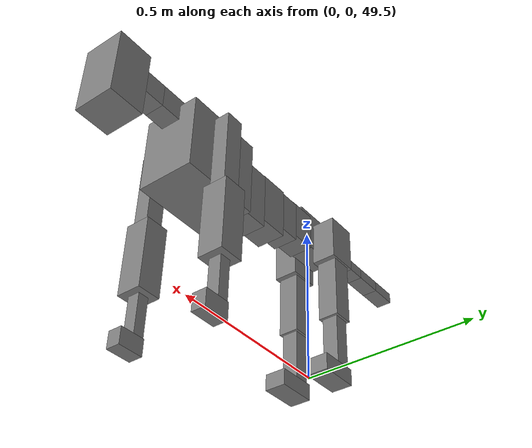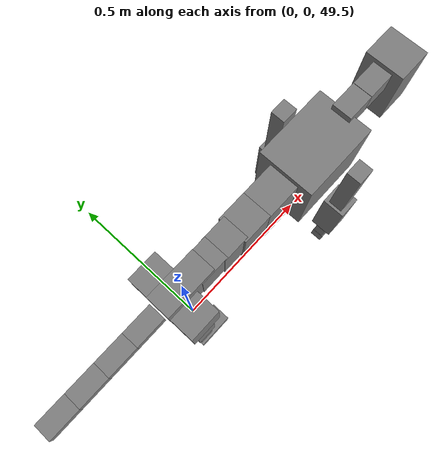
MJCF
<mujoco model="dog">

    <default>
        <joint armature="0.02" stiffness="1" damping="0.2" limited="true"/>
        <geom condim="3" friction="1 0.05 0.05" margin="0.01"/>
        <motor ctrllimited="true" ctrlrange="-1.0 1.0" forcelimited="true" gear="50"/>
    </default>

    <compiler inertiafromgeom="true" angle="radian"/>

    <option timestep="0.016" iterations="50" tolerance="1e-10" solver="Newton" jacobian="dense" cone="pyramidal"/>

    <size nconmax="20000" njmax="60000" nstack="5000000"/>
    <visual>
        <map force="0.1" zfar="30"/>
        <rgba haze="0.15 0.25 0.35 1"/>
        <quality shadowsize="2048"/>
        <global offwidth="800" offheight="800"/>
    </visual>

    <asset>
        <texture type="skybox" builtin="gradient" rgb1="0.3 0.5 0.7" rgb2="0 0 0" width="512" height="512"/>
        <texture name="texplane" type="2d" builtin="checker" rgb1=".2 .3 .4" rgb2=".1 0.15 0.2" width="512" height="512"
                 mark="cross" markrgb=".8 .8 .8"/>
        <texture name="texgeom" type="cube" builtin="flat" mark="cross" width="127" height="1278" rgb1="0.8 0.6 0.4"
                 rgb2="0.8 0.6 0.4" markrgb="1 1 1" random="0.01"/>

        <material name="matplane" reflectance="0.3" texture="texplane" texrepeat="1 1" texuniform="true"/>
        <material name="matgeom" texture="texgeom" texuniform="true" rgba="0.8 0.6 .4 1"/>
    </asset>

    <worldbody>
        <geom name="floor" pos="0 0 0" size="0 0 .25" type="plane" material="matplane" condim="3"/>

        <light directional="false" diffuse=".2 .2 .2" specular="0 0 0" pos="0 0 5" dir="0 0 -1" castshadow="false"/>
        <light mode="targetbodycom" target="torso" directional="false" diffuse=".8 .8 .8" specular="0.3 0.3 0.3"
               pos="0 0 4.0" dir="0 0 -1"/>

        <body name="root" pos="0 0 50">
            <freejoint name="root_1"/>
            <geom type="box" pos="0 0 -0.02" size="0.0774  0.0358  0.063" density="2030"/>

            <body name="spine1" pos="0.054 0 0">
                <joint name="spine1_y" axis="0 1 0" range="0 0.7" limited="true"/>
                <geom type="box" pos="0.02375 0 -0.03" size="0.04375  0.0375  0.05985" density="2030"/>

                <body name="spine2" pos="0.0612 0 0">
                    <joint name="spine2_y" axis="0 1 0" range="-0.15 0.15" limited="true"/>
                    <geom type="box" pos="0.03555  0  -0.04" size="0.04055  0.039  0.06615" density="2030"/>

                    <body name="spine3" pos="0.0730 0 0">
                        <joint name="spine3_y" axis="0 1 0" range="-0.15 0.15" limited="true"/>
                        <geom type="box" pos="0.03555  0  -0.057" size="0.04555  0.0445  0.081" density="2030"/>

                        <body name="spine4" pos="0.0780 0 0">
                            <joint name="spine4_y" axis="0 1 0" range="-0.15 0.15" limited="true"/>
                            <geom type="box" pos="0.05265  0  -0.07" size="0.05265  0.045  0.09135" density="2030"/>

                            <body name="torso" pos="0.1082 0 0">
                                <joint name="torso_y" axis="0 1 0" range="-0.15 0.15" limited="true"/>
                                <geom type="box" pos="0.11925  0  -0.085" size="0.11925  0.085  0.11745"
                                      density="2030"/>

                                <body name="neck1" pos="0.2160  0   0.0180">
                                    <joint name="neck1_y" axis="0 1 0" range="-1.2  -1" limited="true"/>
                                    <geom type="box" pos="0.0423  0  0" size="0.0423  0.03  0.036" density="2325"/>

                                    <body name="neck2" pos="0.0853  0  0">
                                        <joint name="neck2_y" axis="0 1 0" range="0.1  0" limited="true"/>
                                        <geom type="box" pos="0.0423  0  0" size="0.0423  0.03  0.036" density="2325"/>

                                        <body name="head" pos="0.0853  0  0">
                                            <joint name="head_y" axis="0 1 0" range="-0.3  -0.2" limited="true"/>
                                            <geom type="box" pos="0.0531  0  -0.055" size="0.0531  0.06  0.1044"
                                                  density="4030"/>

                                        </body>
                                    </body>
                                </body>

                                <body name="front_shoulder" pos="0.156  0   -0.0480">
                                    <joint name="front_shoulder_y" axis="0 1 0" range="-1 1.5" limited="true"/>
                                    <geom type="box" pos="0 0.13 -0.1038" size="0.0267  0.0228  0.1305" density="1158"/>
                                    <geom type="box" pos="0 -0.13 -0.1038" size="0.0267  0.0228  0.1305"
                                          density="1158"/>

                                    <body name="front_elbow" pos="0  0  -0.2076">
                                        <joint name="front_elbow_y" axis="0 1 0" range="-2 0" limited="true"/>
                                        <geom type="box" pos="0 0.13 -0.1079" size="0.0356  0.0364  0.1079"
                                              density="1081"/>
                                        <geom type="box" pos="0 -0.13 -0.1079" size="0.0356  0.0364  0.1079"
                                              density="1081"/>

                                        <body name="front_wrist" pos="0  0  -0.2158">
                                            <joint name="front_wrist_y" axis="0 1 0" range="-0.2 0" limited="true"/>
                                            <geom type="box" pos="0 0.13 -0.0663" size="0.0161  0.0179  0.0794"
                                                  density="1664"/>
                                            <geom type="box" pos="0 -0.13 -0.0663" size="0.0161  0.0179  0.0794"
                                                  density="1664"/>

                                            <body name="front_finger_end" pos="0  0  -0.1325">
                                                <joint name="front_finger_y" axis="0 1 0" range="-0.4 1"
                                                       limited="true"/>
                                                <geom type="box" pos="0.0205  0.13  -0.0095"
                                                      size="0.0375  0.0205  0.0245" density="1515"/>
                                                <geom type="box" pos="0.0205  -0.13  -0.0095"
                                                      size="0.0375  0.0205  0.0245" density="1515"/>

                                            </body>

                                        </body>
                                    </body>
                                </body>

                            </body>
                        </body>
                    </body>
                </body>
            </body>

            <body name="back_hip" pos="-0.03 0 -0.018">
                <joint name="back_hip_y" axis="0 1 0" range="-1.5 0.3" limited="true"/>
                <geom type="box" pos="0 0.07 -0.0468" size="0.0464  0.0364  0.0696" density="1154"/>
                <geom type="box" pos="0 -0.07 -0.0468" size="0.0464  0.0364  0.0696" density="1154"/>

                <body name="back_knee" pos="0  0  -0.0936">
                    <joint name="back_knee_y" axis="0 1 0" range="0 2.8" limited="true"/>
                    <geom type="box" pos="0 0.07 -0.0998" size="0.0312  0.0307  0.1154" density="1227"/>
                    <geom type="box" pos="0 -0.07 -0.0998" size="0.0312  0.0307  0.1154" density="1227"/>

                    <body name="back_ankle" pos="0  0  -0.1996">
                        <joint name="back_ankle_y" axis="0 1 0" range="-2.2 0" limited="true"/>
                        <geom type="box" pos="0 0.07 -0.0933" size="0.0235  0.0235  0.1045" density="1284"/>
                        <geom type="box" pos="0 -0.07 -0.0933" size="0.0235  0.0235  0.1045" density="1284"/>

                        <body name="back_toe_end" pos="0  0  -0.1865">
                            <joint name="back_toe_y" axis="0 1 0" range="-0.4 1" limited="true"/>
                            <geom type="box" pos="0.0318  0.07  -0.0093" size="0.0583  0.0318  0.0243" density="1515"/>
                            <geom type="box" pos="0.0318  -0.07  -0.0093" size="0.0583  0.0318  0.0243" density="1515"/>

                        </body>
                    </body>
                </body>
            </body>

            <body name="tail1" pos="-0.074 0 -0.006">
                <joint name="tail1_y" axis="0 1 0" range="-0.2 0.2" limited="true"/>
                <geom type="box" pos="-0.0536  0  0" size="0.045  0.025  0.0175" density="1587"/>

                <body name="tail2" pos="-0.09 0 0">
                    <joint name="tail2_y" axis="0 1 0" range="-0.2 0.2" limited="true"/>
                    <geom type="box" pos="-0.0536  0  0" size="0.045  0.025  0.0175" density="1587"/>

                    <body name="tail3" pos="-0.09 0 0">
                        <joint name="tail3_y" axis="0 1 0" range="-0.2 0.2" limited="true"/>
                        <geom type="box" pos="-0.0536  0  0" size="0.045  0.025  0.0175" density="1587"/>

                        <body name="tail4" pos="-0.09 0 0">
                            <joint name="tail4_y" axis="0 1 0" range="-0.2 0.2" limited="true"/>
                            <geom type="box" pos="-0.0536  0  0" size="0.045  0.025  0.0175" density="1587"/>

                        </body>
                    </body>
                </body>
            </body>
        </body>
    </worldbody>

    <actuator>
        <motor joint="spine1_y" forcerange="-150 150     "/>
        <motor joint="spine2_y" forcerange="-150 150     "/>
        <motor joint="spine3_y" forcerange="-150 150     "/>
        <motor joint="spine4_y" forcerange="-150 150     "/>
        <motor joint="torso_y" forcerange="-150 150     "/>
        <motor joint="neck1_y" forcerange="-100 100       "/>
        <motor joint="neck2_y" forcerange="-100 100       "/>
        <motor joint="head_y" forcerange="-150 150       "/>
        <motor joint="front_shoulder_y" forcerange="-148.51 103.60"/>
        <motor joint="front_elbow_y" forcerange="-175.51 189.19"/>
        <motor joint="front_wrist_y" forcerange="-83.30 59.80"/>
        <motor joint="front_finger_y" forcerange="-43.31 25.86"/>
        <motor joint="back_hip_y" forcerange="-323.76 361.72"/>
        <motor joint="back_knee_y" forcerange="-298.82 348.27"/>
        <motor joint="back_angle_y" forcerange="-63.57 211.86"/>
        <motor joint="back_toe_y" forcerange="-121.40 53.15"/>
        <motor joint="tail1_y" forcerange="-50 50     "/>
        <motor joint="tail2_y" forcerange="-50 50     "/>
        <motor joint="tail3_y" forcerange="-50 50     "/>
        <motor joint="tail4_y" forcerange="-50 50     "/>
    </actuator>
</mujoco>
